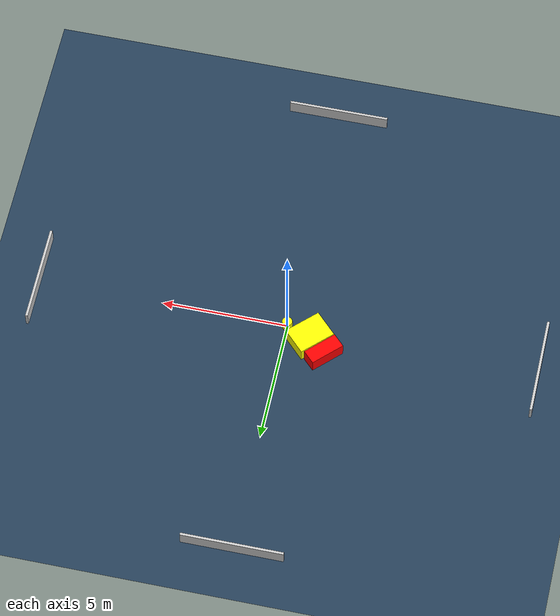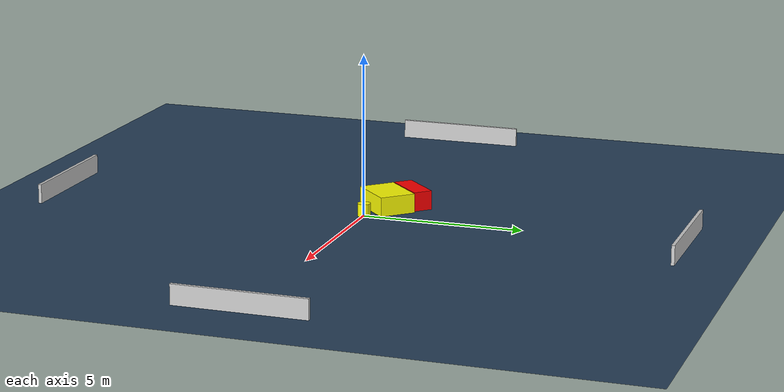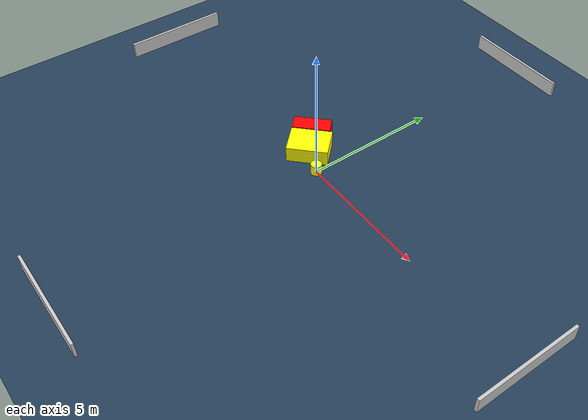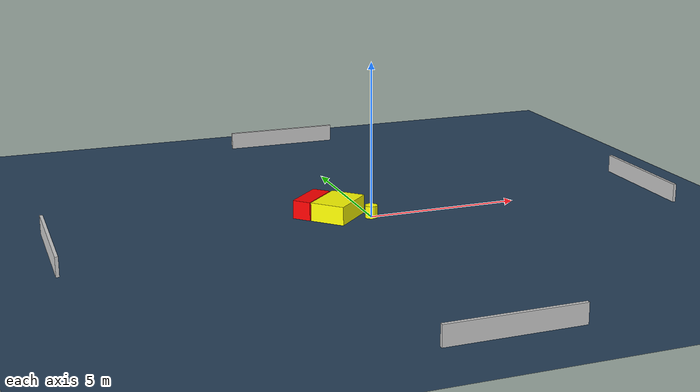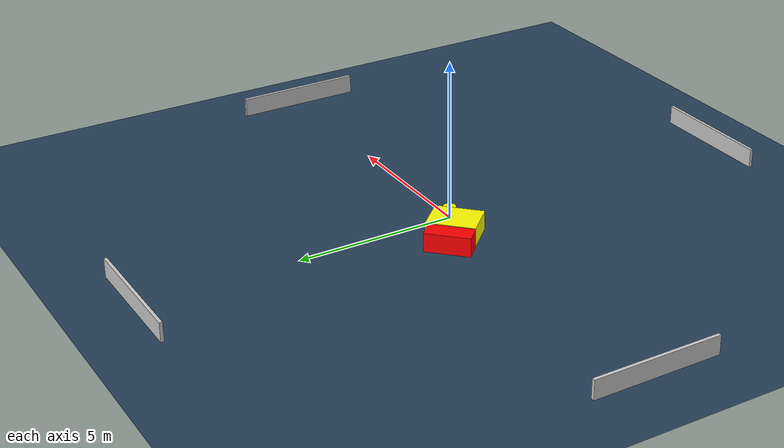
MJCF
<?xml version="1.0" ?>
<mujoco model="generated_environment">
  <option timestep="0.01" integrator="RK4" cone="elliptic"/>
  <default>
    <geom density="1"/>
  </default>
  <asset>
    <texture builtin="gradient" height="3072" name="skybox" rgb1="0.3 0.5 0.7" rgb2="0 0 0" type="skybox" width="512"/>
    <texture builtin="checker" height="300" name="groundplane" rgb1="0.2 0.3 0.4" rgb2="0.1 0.2 0.3" type="2d" width="300"/>
    <material name="groundplane" reflectance="0.2" texrepeat="5 5" texture="groundplane"/>
  </asset>
  <worldbody>
    <light dir="0 0 -1" directional="true" pos="0 0 1.5"/>
    <geom condim="3" friction="0.5 0.005 0.001" material="groundplane" name="floor" pos="0 0 0" size="0 0 0.05" type="plane"/>
    <body name="walls">
      <geom name="wall_1" condim="4" pos="-10.0 0.0 0.3" rgba="0.800000011920929 0.800000011920929 0.800000011920929 1.0" size="0.05 2.0 0.3" type="box"/>
      <geom name="wall_2" condim="4" pos="10.0 0.0 0.3" rgba="0.800000011920929 0.800000011920929 0.800000011920929 1.0" size="0.05 2.0 0.3" type="box"/>
      <geom name="wall_3" condim="4" pos="0.0 -10.0 0.3" rgba="0.800000011920929 0.800000011920929 0.800000011920929 1.0" size="2.0 0.05 0.3" type="box"/>
      <geom name="wall_4" condim="4" pos="0.0 10.0 0.3" rgba="0.800000011920929 0.800000011920929 0.800000011920929 1.0" size="2.0 0.05 0.3" type="box"/>
    </body>
    <body name="robot">
      <joint name="joint_x" type="slide" pos="0 0 0" axis="1 0 0"/>
      <joint name="joint_y" type="slide" pos="0 0 0" axis="0 1 0"/>
      <geom name="robot" type="cylinder" pos="0.0 0.0 0.2" size="0.2 0.2 0.0" mass="5.0" friction="1.0 0.005 0.0001" condim="4" rgba="1.0 1.0 0.0 1.0"/>
    </body>
    <body name="obstacle_1_movable">
      <geom name="obstacle_1_movable" condim="4" pos="-0.9841777746992023 0.412350341582928 0.3" euler="0 0 134.27575504352214" friction="0.0 0.005 0.001" rgba="1.0 1.0 0.0 1.0" size="0.5692181479220618 0.7547078531637328 0.3" type="box" mass="0.1"/>
      <joint type="free"/>
    </body>
    <body name="obstacle_2_static">
      <geom name="obstacle_2_static" condim="4" pos="-1.6622280434291594 1.0196876639575476 0.3" euler="0 0 224.6164843149718" friction="0.0 0.005 0.001" rgba="1.0 0.0 0.0 1.0" size="0.7042733227865077 0.2986721197761984 0.3" type="box"/>
    </body>
  </worldbody>
  <actuator>
    <motor name="actuator_x" joint="joint_x" gear="1" ctrlrange="-1 1"/>
    <motor name="actuator_y" joint="joint_y" gear="1" ctrlrange="-1 1"/>
  </actuator>
</mujoco>
